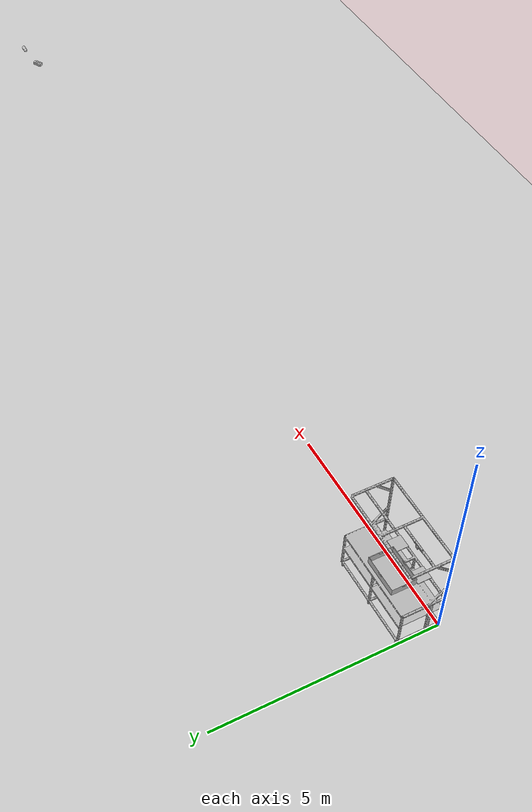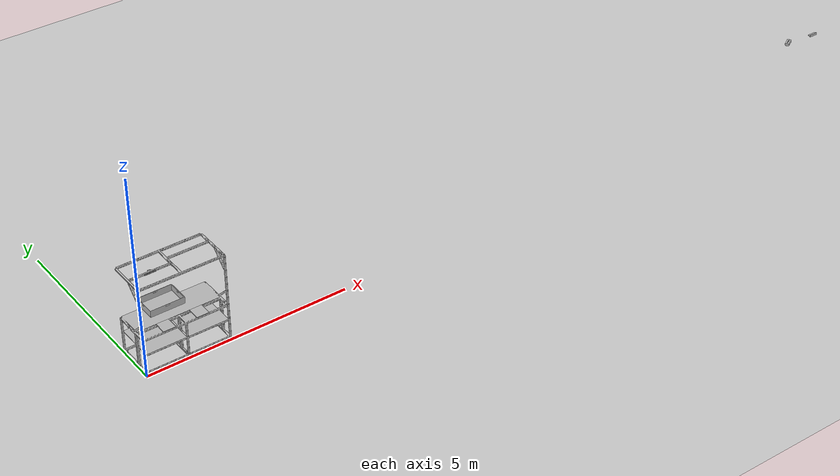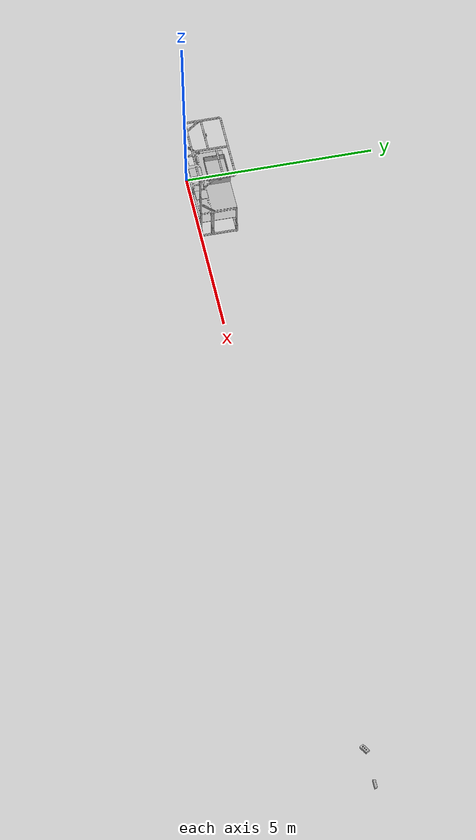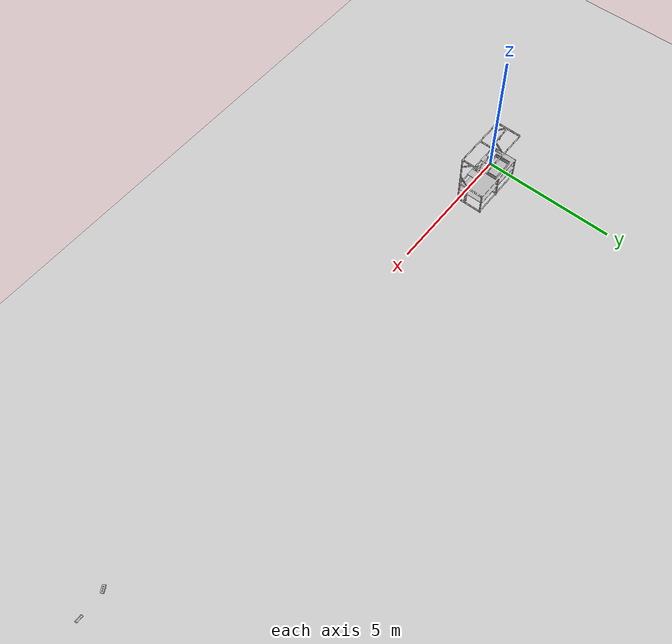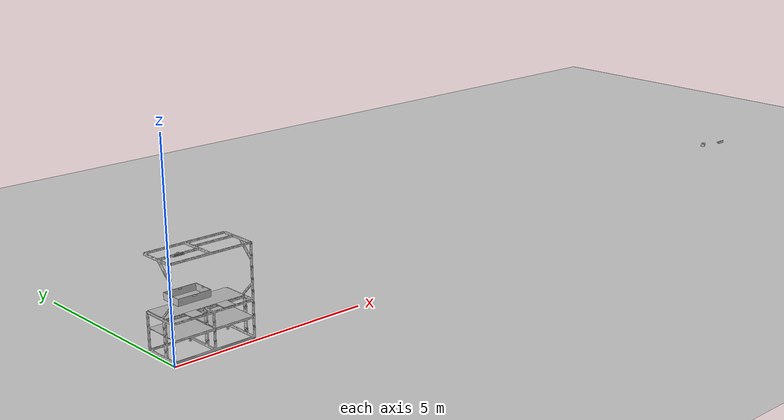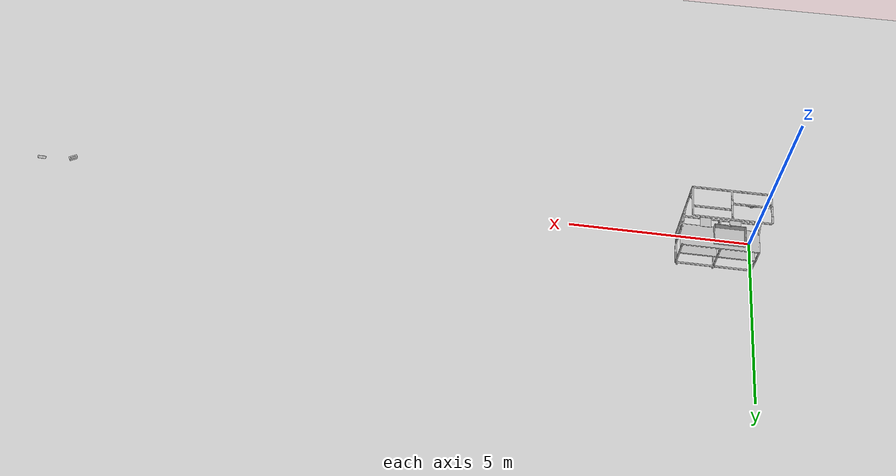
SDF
<?xml version="1.0" ?>
<sdf version="1.4">
	<world name="default">
	<scene>
        <ambient>0.0 0.0 0.0 1.0</ambient>
        <shadows>0</shadows>
    </scene>
    <include>
      <uri>model://ground_plane</uri>
    </include>
    <include>
      <uri>model://sun</uri>
      <pose>0 0 0 0 0 0</pose>
    </include>
    <include>
      <uri>model://open-cardboard-box</uri>
      <pose>0.830397 0.666998 1.11561 0 0 0</pose>
    </include>
    <include>
      <uri>model://Brick</uri>
      <pose>19 0.5 1.2 0 0 0</pose>
    </include>
    <include>
      <uri>model://Concrete_Roadblock</uri>
      <pose>20 0.5 1.2 0 0 0</pose>
    </include>
    <include>
    	<uri>model://workcell-assembly-v2-kinect</uri>
      <name>workcell-assembly-v2-kinnect</name>
      <pose>0 0 0 0 0 0</pose>
    </include>
  </world>
</sdf>

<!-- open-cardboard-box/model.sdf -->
<sdf version="1.6">
<model name="open-cardboard-box">
  <pose>0 0 0 0 0 0</pose>
  <static>false</static>
    <link name="link">
      <inertial>
        <mass>4</mass>
        <inertia>
          <ixx>0.16667</ixx>
          <ixy>0.0</ixy>
          <ixz>0.0</ixz>
          <iyy>0.16667</iyy>
          <iyz>0.0</iyz>
          <izz>0.16667</izz>
        </inertia>
      </inertial>
      <collision name="collision">
        <geometry>
          <mesh>
            <uri>model://open-cardboard-box/meshes/openbox.dae</uri>
            <scale>0.015 0.01 0.003</scale>
          </mesh>
        </geometry>
      <max_contacts>10</max_contacts>
        <surface>
			<contact>
              <ode/>
            </contact>
            <bounce/>
           <friction>
              <ode>
              <mu>3</mu>
              <mu2>100</mu2>
              </ode>
           </friction>
      </surface>
      </collision>
      <visual name="visual">
        <geometry>
          <mesh>
            <uri>model://open-cardboard-box/meshes/openbox.dae</uri>
            <scale>0.015 0.01 0.003</scale>
          </mesh>
        </geometry>
      </visual>
      <self_collide>0</self_collide>
        <kinematic>0</kinematic>
        <gravity>1</gravity>
    </link>
  </model>
</sdf>

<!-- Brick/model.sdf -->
<sdf version="1.6">
<model name="Brick">
  <pose>0 0 0.0 0 0 0</pose>
  <static>false</static>
    <link name="link">
      <inertial>
        <mass>0.003</mass>
        <inertia>
          <ixx>0.16667</ixx>
          <ixy>0.0</ixy>
          <ixz>0.0</ixz>
          <iyy>0.16667</iyy>
          <iyz>0.0</iyz>
          <izz>0.16667</izz>
        </inertia>
      </inertial>
      <collision name="collision">
        <geometry>
          <mesh>
            <uri>model://Brick/mesh/Brick.dae</uri>
            <scale>0.00003 0.00003 0.00003</scale>
          </mesh>
        </geometry>
      <max_contacts>10</max_contacts>
        <surface>
			<contact>
              <ode/>
            </contact>
            <bounce/>
           <friction>
              <ode>
              <mu>0.3</mu>
              <mu2>100</mu2>
              </ode>
           </friction>
      </surface>
      </collision>
      <visual name="visual">
        <geometry>
          <mesh>
            <uri>model://Brick/mesh/Brick.dae</uri>
            <scale>0.00003 0.00003 0.00003</scale>
          </mesh>
        </geometry>
      </visual>
      <self_collide>0</self_collide>
        <kinematic>0</kinematic>
        <gravity>1</gravity>
    </link>
  </model>
</sdf>

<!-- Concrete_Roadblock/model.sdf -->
<sdf version="1.6">
<model name="Concrete_Roadblock">
  <pose>0 0 0.0 0 0 0</pose>
  <static>false</static>
    <link name="link">
      <inertial>
        <mass>0.003</mass>
        <inertia>
          <ixx>0.16667</ixx>
          <ixy>0.0</ixy>
          <ixz>0.0</ixz>
          <iyy>0.16667</iyy>
          <iyz>0.0</iyz>
          <izz>0.16667</izz>
        </inertia>
      </inertial>
      <collision name="collision">
        <geometry>
          <mesh>
            <uri>model://Concrete_Roadblock/mesh/Concrete_Roadblock.dae</uri>
            <scale>0.03 0.03 0.03</scale>
          </mesh>
        </geometry>
      <max_contacts>10</max_contacts>
        <surface>
			<contact>
              <ode/>
            </contact>
            <bounce/>
           <friction>
              <ode>
              <mu>0.3</mu>
              <mu2>100</mu2>
              </ode>
           </friction>
      </surface>
      </collision>
      <visual name="visual">
        <geometry>
          <mesh>
            <uri>model://Concrete_Roadblock/mesh/Concrete_Roadblock.dae</uri>
            <scale>0.03 0.03 0.03</scale>
          </mesh>
        </geometry>
      </visual>
      <self_collide>0</self_collide>
        <kinematic>0</kinematic>
        <gravity>1</gravity>
    </link>
  </model>
</sdf>

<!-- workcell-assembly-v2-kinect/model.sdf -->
<sdf version="1.4">
<model name="workcell-assembly-v2">
<static>false</static>

  <!-- workcell-assembly-v2 -->
  <link name="workcell-assembly-v2">
    <pose>0 0 0.07 0 0 0</pose>
    <inertial>
      <mass>13.55</mass>
      <inertia><ixx>0.294</ixx><iyy>0.294</iyy><izz>0.023</izz><ixy>0</ixy><ixz>0</ixz><iyz>0</iyz></inertia>
    </inertial>
    <collision name="collision">
      <geometry>
          <mesh>
            <uri>model://workcell-assembly-v2/meshes/workcell-assembly-v2.stl</uri>
          </mesh>
      </geometry>
    </collision>
    <visual name="visual">
      <geometry>
          <mesh>
            <uri>model://workcell-assembly-v2/meshes/workcell-assembly-v2.stl</uri>
          </mesh>
      </geometry>
    </visual>
  </link>

 <!-- robot-base-fixation1 -->
  <link name="robot-base-fixation1">
    <pose>0.62 0.138 0.97 0 0 0</pose>			<!-- to move the arm-base edit the x-coordinate -->
    <inertial>
      <mass>1.84</mass>
      <inertia><ixx>0.294</ixx><iyy>0.294</iyy><izz>0.023</izz><ixy>0</ixy><ixz>0</ixz><iyz>0</iyz></inertia>
    </inertial>
    <collision name="collision">
      <geometry>
          <mesh>
            <uri>model://workcell-assembly-v2/meshes/robot-base-fixation.stl</uri>
          </mesh>
      </geometry>
    </collision>
    <visual name="visual">
      <geometry>
          <mesh>
            <uri>model://workcell-assembly-v2/meshes/robot-base-fixation.stl</uri>
          </mesh>
      </geometry>
    </visual>
  </link>

  <!-- robot-base-fixation2 -->
  <link name="robot-base-fixation2">
    <pose>1.42 0.138 0.97 0 0 0</pose>			<!-- to move the arm-base edit the x-coordinate -->
    <inertial>
      <mass>1.84</mass>
      <inertia><ixx>0.294</ixx><iyy>0.294</iyy><izz>0.023</izz><ixy>0</ixy><ixz>0</ixz><iyz>0</iyz></inertia>
    </inertial>
    <collision name="collision">
      <geometry>
          <mesh>
            <uri>model://workcell-assembly-v2/meshes/robot-base-fixation.stl</uri>
          </mesh>
      </geometry>
    </collision>
    <visual name="visual">
      <geometry>
          <mesh>
            <uri>model://workcell-assembly-v2/meshes/robot-base-fixation.stl</uri>
          </mesh>
      </geometry>
    </visual>
  </link>

<!-- camera-movable-fixation1 -->
  <link name="camera-movable-fixation1">
    <pose>0.02 0.42 2.25 0 0 0</pose>			<!-- to move the camera edit the y-coordinate -->
    <inertial>
      <mass>1.84</mass>
      <inertia><ixx>0.294</ixx><iyy>0.294</iyy><izz>0.023</izz><ixy>0</ixy><ixz>0</ixz><iyz>0</iyz></inertia>
    </inertial>
    <collision name="collision">
      <geometry>
          <mesh>
            <uri>model://workcell-assembly-v2/meshes/camera-movable-fixation.stl</uri>
          </mesh>
      </geometry>
    </collision>
    <visual name="visual">
      <geometry>
          <mesh>
            <uri>model://workcell-assembly-v2/meshes/camera-movable-fixation.stl</uri>
          </mesh>
      </geometry>
    </visual>
  </link>

<!-- camera-movable-fixation2 -->
  <link name="camera-movable-fixation2">
    <pose>1.04 0.62 2.25 0 0 0</pose>			<!-- to move the camera edit the y-coordinate -->
    <inertial>
      <mass>1.84</mass>
      <inertia><ixx>0.294</ixx><iyy>0.294</iyy><izz>0.023</izz><ixy>0</ixy><ixz>0</ixz><iyz>0</iyz></inertia>
    </inertial>
    <collision name="collision">
      <geometry>
          <mesh>
            <uri>model://workcell-assembly-v2/meshes/camera-movable-fixation.stl</uri>
          </mesh>
      </geometry>
    </collision>
    <visual name="visual">
      <geometry>
          <mesh>
            <uri>model://workcell-assembly-v2/meshes/camera-movable-fixation.stl</uri>
          </mesh>
      </geometry>
    </visual>
  </link>

  <!-- Top Kinect Camera -->
  <link name="camera_link">

    <pose>0.52 0.42 2.214 0 1.57 -1.57</pose>
      <inertial>
        <mass>0.1</mass>
      </inertial>
      <collision name="collision">
        <geometry>
          <box>
            <size>0.073000 0.276000 0.072000</size>
          </box>
        </geometry>
      </collision>
      <visual name="visual">
        <geometry>
          <mesh>
            <uri>model://kinect/meshes/kinect.dae</uri>
          </mesh>
        </geometry>
      </visual>
      <sensor name="camera" type="depth">
        <update_rate>20</update_rate>
        <camera>
          <horizontal_fov>1.047198</horizontal_fov>
          <image>
            <width>640</width>
            <height>480</height>
            <format>R8G8B8</format>
          </image>
          <clip>
            <near>0.05</near>
            <far>3</far>
          </clip>
        </camera>
        <plugin name="camera_plugin" filename="libgazebo_ros_openni_kinect.so">
          <baseline>0.2</baseline>
          <alwaysOn>true</alwaysOn>
          <updateRate>0.0</updateRate>
          <cameraName>kinect_camera_ir</cameraName>
          <imageTopicName>/kinect_camera/depth/image_raw</imageTopicName>
          <cameraInfoTopicName>/kinect_camera/depth/camera_info</cameraInfoTopicName>
          <depthImageTopicName>/kinect_camera/depth/depth_image_raw</depthImageTopicName>
          <depthImageInfoTopicName>/kinect_camera/depth/camera_info</depthImageInfoTopicName>
          <pointCloudTopicName>/kinect_camera/depth/points</pointCloudTopicName>
          <frameName>camera_link</frameName>
          <pointCloudCutoff>0.05</pointCloudCutoff>
          <distortionK1>0</distortionK1>
          <distortionK2>0</distortionK2>
          <distortionK3>0</distortionK3>
          <distortionT1>0</distortionT1>
          <distortionT2>0</distortionT2>
          <CxPrime>0</CxPrime>
          <Cx>0</Cx>
          <Cy>0</Cy>
          <focalLength>0</focalLength>
          <hackBaseline>0</hackBaseline>
        </plugin>
      </sensor>

  </link>

<link name="camera_link_optical">
<pose>0.52 0.42 2.214 3.204 -0.075 3.2514</pose>
</link>

<!-- fix to ground -->
  <joint name="fix-to-ground" type="fixed">
    <pose>0 0 0 0 0 0</pose>
    <parent>world</parent>
    <child>workcell-assembly-v2</child>
  </joint>

  <!-- fix robot-base-fixation1 to workcell -->
  <joint name="fix-robot-base-fixation1" type="fixed">
    <pose>0 0 0 0 0 0</pose>
    <parent>workcell-assembly-v2</parent>
    <child>robot-base-fixation1</child>
  </joint>

  <!-- fix robot-base-fixation2 to workcell -->
  <joint name="fix-robot-base-fixation2" type="fixed">
    <pose>0 0 0 0 0 0</pose>
    <parent>workcell-assembly-v2</parent>
    <child>robot-base-fixation2</child>
  </joint>

  <!-- fix camera-movable-fixation1 to workcell -->
  <joint name="fix-camera-movable-fixation1" type="fixed">
    <pose>0 0 0 0 0 0</pose>
    <parent>workcell-assembly-v2</parent>
    <child>camera-movable-fixation1</child>
  </joint>

  <!-- fix camera-movable-fixation2 to workcell -->
  <joint name="fix-camera-movable-fixation2" type="fixed">
    <pose>0 0 0 0 0 0</pose>
    <parent>workcell-assembly-v2</parent>
    <child>camera-movable-fixation2</child>
  </joint>

 <!-- camera joint -->
   <joint name="camera_joint" type="fixed">
    <pose>0 0 0 0 0 0</pose>
    <parent>camera-movable-fixation1</parent>
    <child>camera_link</child>
  </joint>

   <!-- generate an optical frame
      http://www.ros.org/reps/rep-0103.html#suffix-frames
      so that ros and opencv can operate on the camera frame correctly
      -->
  <joint name="camera_optical_joint" type="fixed">
    <!-- these values have to be these values otherwise the gazebo camera
        image won't be aligned properly with the frame it is supposedly
        originating from -->
    <pose> 0 0 0 -1.57 3.414 -1.57 </pose>
    <parent>camera_link</parent>
    <child>camera_link_optical</child>
  </joint>

  </model>

  </sdf>
